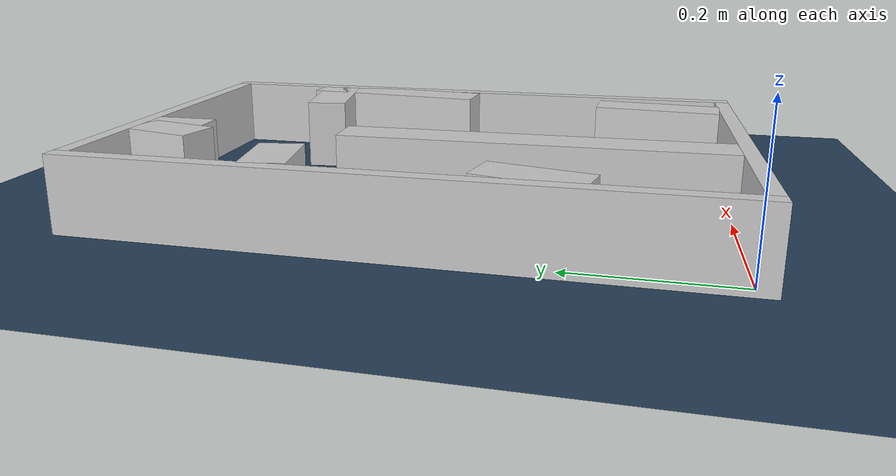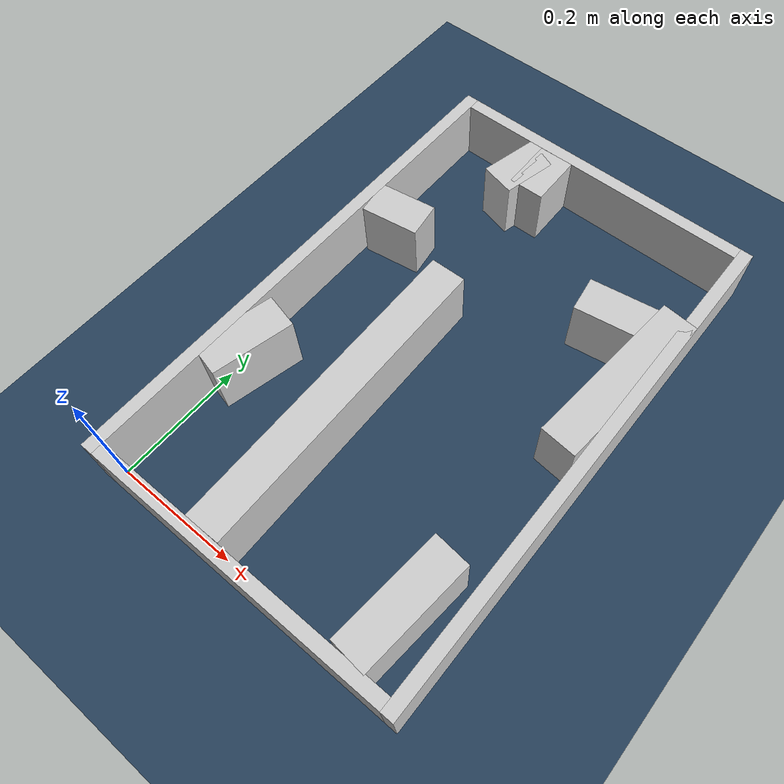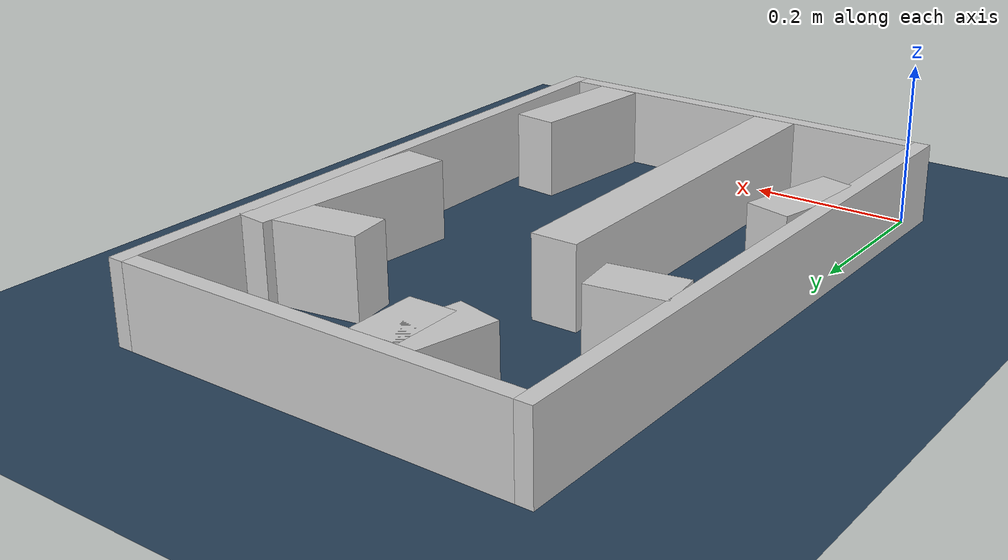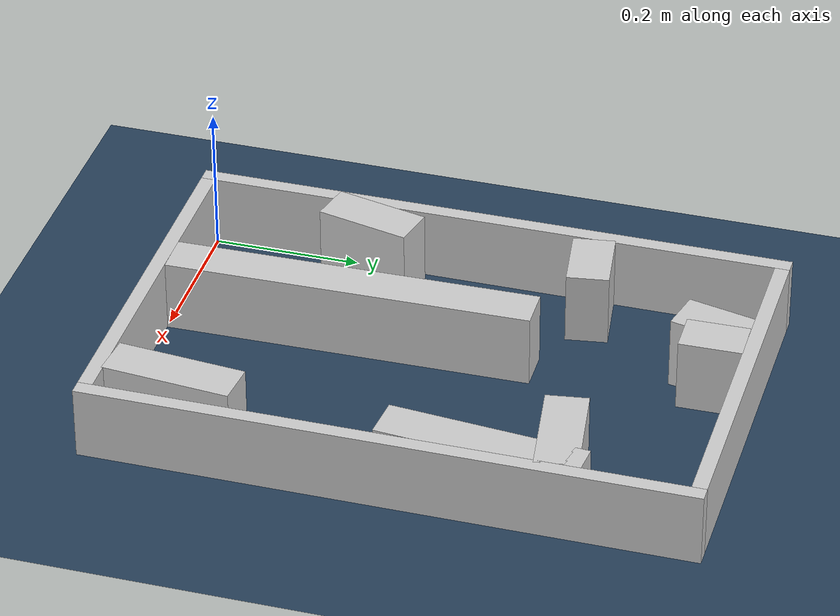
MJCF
<?xml version="1.0" ?>
<mujoco model="generated_real_template">
  <compiler angle="degree"/>
  <option timestep="0.002" integrator="implicitfast" iterations="100" cone="elliptic"/>
  <default>
    <geom density="1"/>
  </default>
  <asset>
    <texture builtin="gradient" height="3072" rgb1="0.3 0.5 0.7" rgb2="0 0 0" type="skybox" width="512"/>
    <texture builtin="checker" height="300" mark="edge" markrgb="0.8 0.8 0.8" name="groundplane" rgb1="0.2 0.3 0.4" rgb2="0.1 0.2 0.3" type="2d" width="300"/>
    <material name="groundplane" reflectance="0.2" texrepeat="5 5" texture="groundplane" texuniform="true"/>
  </asset>
  <worldbody>
    <light dir="0 0 -1" directional="true" pos="0 0 1.5"/>
    <geom name="floor" type="plane" condim="4" friction="0.5 0.005 0.001" material="groundplane" size="0 0 0.05"/>
    <body name="walls">
      <geom name="wall_boundary_left" type="box" condim="4" friction="1.0 0.005 0.0001" rgba="0.8 0.8 0.8 1" pos="-0.010000 0.387500 0.050000" euler="0 0 0.000000" size="0.010000 0.407500 0.050000"/>
      <geom name="wall_boundary_right" type="box" condim="4" friction="1.0 0.005 0.0001" rgba="0.8 0.8 0.8 1" pos="0.500000 0.387500 0.050000" euler="0 0 0.000000" size="0.010000 0.407500 0.050000"/>
      <geom name="wall_boundary_bottom" type="box" condim="4" friction="1.0 0.005 0.0001" rgba="0.8 0.8 0.8 1" pos="0.245000 -0.010000 0.050000" euler="0 0 0.000000" size="0.245000 0.010000 0.050000"/>
      <geom name="wall_boundary_top" type="box" condim="4" friction="1.0 0.005 0.0001" rgba="0.8 0.8 0.8 1" pos="0.245000 0.785000 0.050000" euler="0 0 0.000000" size="0.245000 0.010000 0.050000"/>
      <geom name="wall_inner_1_1" type="box" condim="4" friction="1.0 0.005 0.0001" rgba="0.8 0.8 0.8 1" pos="0.180037 0.247698 0.050000" euler="0 0 90.830594" size="0.247724 0.028500 0.050000"/>
      <geom name="wall_inner_1_2" type="box" condim="4" friction="1.0 0.005 0.0001" rgba="0.8 0.8 0.8 1" pos="0.173004 0.732787 0.050000" euler="0 0 90.830594" size="0.042217 0.028500 0.050000"/>
      <geom name="wall_inner_2_1" type="box" condim="4" friction="1.0 0.005 0.0001" rgba="0.8 0.8 0.8 1" pos="0.431001 0.087168 0.050000" euler="0 0 84.737057" size="0.087537 0.028500 0.050000"/>
      <geom name="wall_inner_2_2" type="box" condim="4" friction="1.0 0.005 0.0001" rgba="0.8 0.8 0.8 1" pos="0.469331 0.503278 0.050000" euler="0 0 84.737057" size="0.133968 0.028500 0.050000"/>
      <geom name="wall_inner_3_1" type="box" condim="4" friction="1.0 0.005 0.0001" rgba="0.8 0.8 0.8 1" pos="0.139707 0.726109 0.050000" euler="0 0 -103.258309" size="0.050229 0.028500 0.050000"/>
      <geom name="wall_inner_3_2" type="box" condim="4" friction="1.0 0.005 0.0001" rgba="0.8 0.8 0.8 1" pos="0.022603 0.229109 0.050000" euler="0 0 -103.258309" size="0.064802 0.028500 0.050000"/>
      <geom name="wall_inner_4_1" type="box" condim="4" friction="1.0 0.005 0.0001" rgba="0.8 0.8 0.8 1" pos="0.420533 0.593565 0.050000" euler="0 0 -171.454384" size="0.070247 0.028500 0.050000"/>
      <geom name="wall_inner_4_2" type="box" condim="4" friction="1.0 0.005 0.0001" rgba="0.8 0.8 0.8 1" pos="0.045853 0.537264 0.050000" euler="0 0 -171.454384" size="0.046368 0.028500 0.050000"/>
    </body>
  </worldbody>
</mujoco>
